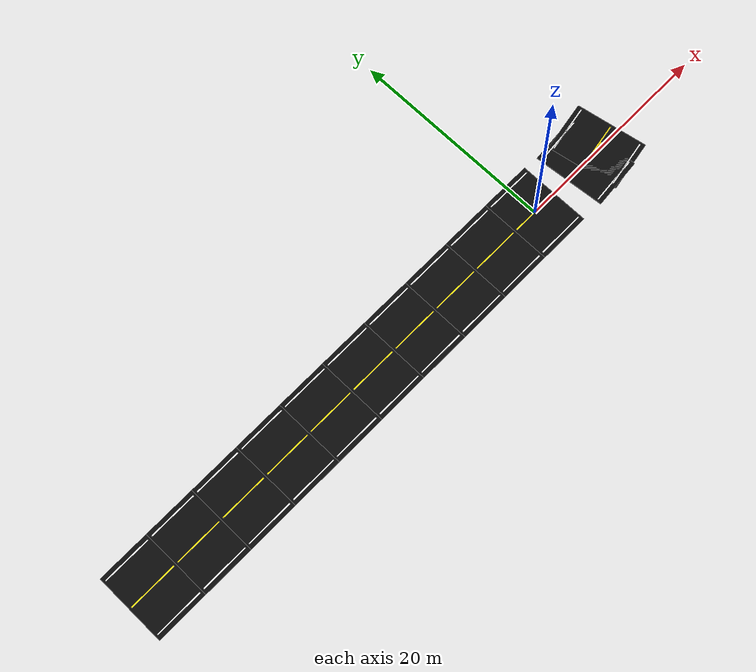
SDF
<sdf version="1.6">
 <world name="curved_road_world">
  <include><uri>model://sun</uri></include>
  <model name="road_straight_00">
   <static>true</static>
   <pose>-45.000 0.000 0.015 0 0 0.000000</pose>
   <link name="road_link">
    <collision name="road_collision"><geometry><box><size>5.000 7.000 0.04</size></box></geometry></collision>
    <visual name="road_visual">
     <geometry><box><size>5.000 7.000 0.04</size></box></geometry>
     <material>
      <ambient>0.025 0.025 0.025 1</ambient>
      <diffuse>0.035 0.035 0.035 1</diffuse>
      <specular>0.01 0.01 0.01 1</specular>
     </material>
    </visual>
   </link>
  </model>
  <model name="road_straight_01">
   <static>true</static>
   <pose>-40.000 0.000 0.015 0 0 0.000000</pose>
   <link name="road_link">
    <collision name="road_collision"><geometry><box><size>5.000 7.000 0.04</size></box></geometry></collision>
    <visual name="road_visual">
     <geometry><box><size>5.000 7.000 0.04</size></box></geometry>
     <material>
      <ambient>0.025 0.025 0.025 1</ambient>
      <diffuse>0.035 0.035 0.035 1</diffuse>
      <specular>0.01 0.01 0.01 1</specular>
     </material>
    </visual>
   </link>
  </model>
  <model name="road_straight_02">
   <static>true</static>
   <pose>-35.000 0.000 0.015 0 0 0.000000</pose>
   <link name="road_link">
    <collision name="road_collision"><geometry><box><size>5.000 7.000 0.04</size></box></geometry></collision>
    <visual name="road_visual">
     <geometry><box><size>5.000 7.000 0.04</size></box></geometry>
     <material>
      <ambient>0.025 0.025 0.025 1</ambient>
      <diffuse>0.035 0.035 0.035 1</diffuse>
      <specular>0.01 0.01 0.01 1</specular>
     </material>
    </visual>
   </link>
  </model>
  <model name="road_straight_03">
   <static>true</static>
   <pose>-30.000 0.000 0.015 0 0 0.000000</pose>
   <link name="road_link">
    <collision name="road_collision"><geometry><box><size>5.000 7.000 0.04</size></box></geometry></collision>
    <visual name="road_visual">
     <geometry><box><size>5.000 7.000 0.04</size></box></geometry>
     <material>
      <ambient>0.025 0.025 0.025 1</ambient>
      <diffuse>0.035 0.035 0.035 1</diffuse>
      <specular>0.01 0.01 0.01 1</specular>
     </material>
    </visual>
   </link>
  </model>
  <model name="road_straight_04">
   <static>true</static>
   <pose>-25.000 0.000 0.015 0 0 0.000000</pose>
   <link name="road_link">
    <collision name="road_collision"><geometry><box><size>5.000 7.000 0.04</size></box></geometry></collision>
    <visual name="road_visual">
     <geometry><box><size>5.000 7.000 0.04</size></box></geometry>
     <material>
      <ambient>0.025 0.025 0.025 1</ambient>
      <diffuse>0.035 0.035 0.035 1</diffuse>
      <specular>0.01 0.01 0.01 1</specular>
     </material>
    </visual>
   </link>
  </model>
  <model name="road_straight_05">
   <static>true</static>
   <pose>-20.000 0.000 0.015 0 0 0.000000</pose>
   <link name="road_link">
    <collision name="road_collision"><geometry><box><size>5.000 7.000 0.04</size></box></geometry></collision>
    <visual name="road_visual">
     <geometry><box><size>5.000 7.000 0.04</size></box></geometry>
     <material>
      <ambient>0.025 0.025 0.025 1</ambient>
      <diffuse>0.035 0.035 0.035 1</diffuse>
      <specular>0.01 0.01 0.01 1</specular>
     </material>
    </visual>
   </link>
  </model>
  <model name="road_straight_06">
   <static>true</static>
   <pose>-15.000 0.000 0.015 0 0 0.000000</pose>
   <link name="road_link">
    <collision name="road_collision"><geometry><box><size>5.000 7.000 0.04</size></box></geometry></collision>
    <visual name="road_visual">
     <geometry><box><size>5.000 7.000 0.04</size></box></geometry>
     <material>
      <ambient>0.025 0.025 0.025 1</ambient>
      <diffuse>0.035 0.035 0.035 1</diffuse>
      <specular>0.01 0.01 0.01 1</specular>
     </material>
    </visual>
   </link>
  </model>
  <model name="road_straight_07">
   <static>true</static>
   <pose>-10.000 0.000 0.015 0 0 0.000000</pose>
   <link name="road_link">
    <collision name="road_collision"><geometry><box><size>5.000 7.000 0.04</size></box></geometry></collision>
    <visual name="road_visual">
     <geometry><box><size>5.000 7.000 0.04</size></box></geometry>
     <material>
      <ambient>0.025 0.025 0.025 1</ambient>
      <diffuse>0.035 0.035 0.035 1</diffuse>
      <specular>0.01 0.01 0.01 1</specular>
     </material>
    </visual>
   </link>
  </model>
  <model name="road_straight_08">
   <static>true</static>
   <pose>-5.000 0.000 0.015 0 0 0.000000</pose>
   <link name="road_link">
    <collision name="road_collision"><geometry><box><size>5.000 7.000 0.04</size></box></geometry></collision>
    <visual name="road_visual">
     <geometry><box><size>5.000 7.000 0.04</size></box></geometry>
     <material>
      <ambient>0.025 0.025 0.025 1</ambient>
      <diffuse>0.035 0.035 0.035 1</diffuse>
      <specular>0.01 0.01 0.01 1</specular>
     </material>
    </visual>
   </link>
  </model>
  <model name="road_straight_09">
   <static>true</static>
   <pose>0.000 0.000 0.015 0 0 0.000000</pose>
   <link name="road_link">
    <collision name="road_collision"><geometry><box><size>5.000 7.000 0.04</size></box></geometry></collision>
    <visual name="road_visual">
     <geometry><box><size>5.000 7.000 0.04</size></box></geometry>
     <material>
      <ambient>0.025 0.025 0.025 1</ambient>
      <diffuse>0.035 0.035 0.035 1</diffuse>
      <specular>0.01 0.01 0.01 1</specular>
     </material>
    </visual>
   </link>
  </model>
  <model name="road_left_90_curve_01">
   <static>true</static>
   <pose>6.743 0.076 0.015 0 0 0.087266</pose>
   <link name="road_link">
    <collision name="road_collision"><geometry><box><size>5.000 7.000 0.04</size></box></geometry></collision>
    <visual name="road_visual">
     <geometry><box><size>5.000 7.000 0.04</size></box></geometry>
     <material>
      <ambient>0.025 0.025 0.025 1</ambient>
      <diffuse>0.035 0.035 0.035 1</diffuse>
      <specular>0.01 0.01 0.01 1</specular>
     </material>
    </visual>
   </link>
  </model>
  <model name="road_left_90_curve_02">
   <static>true</static>
   <pose>8.473 0.304 0.015 0 0 0.174533</pose>
   <link name="road_link">
    <collision name="road_collision"><geometry><box><size>5.000 7.000 0.04</size></box></geometry></collision>
    <visual name="road_visual">
     <geometry><box><size>5.000 7.000 0.04</size></box></geometry>
     <material>
      <ambient>0.025 0.025 0.025 1</ambient>
      <diffuse>0.035 0.035 0.035 1</diffuse>
      <specular>0.01 0.01 0.01 1</specular>
     </material>
    </visual>
   </link>
  </model>
  <model name="left_edge_straight_00">
   <static>true</static>
   <pose>-45.000 3.050 0.050 0 0 0.000000</pose>
   <link name="line_link">
    <visual name="line_visual">
     <geometry><box><size>4.600 0.120 0.012</size></box></geometry>
     <material><ambient>1 1 1 1</ambient><diffuse>1 1 1 1</diffuse></material>
    </visual>
   </link>
  </model>
  <model name="right_edge_straight_00">
   <static>true</static>
   <pose>-45.000 -3.050 0.050 0 0 0.000000</pose>
   <link name="line_link">
    <visual name="line_visual">
     <geometry><box><size>4.600 0.120 0.012</size></box></geometry>
     <material><ambient>1 1 1 1</ambient><diffuse>1 1 1 1</diffuse></material>
    </visual>
   </link>
  </model>
  <model name="center_line_straight_00">
   <static>true</static>
   <pose>-45.000 0.000 0.050 0 0 0.000000</pose>
   <link name="line_link">
    <visual name="line_visual">
     <geometry><box><size>4.600 0.120 0.012</size></box></geometry>
     <material><ambient>1 0.85 0.05 1</ambient><diffuse>1 0.85 0.05 1</diffuse></material>
    </visual>
   </link>
  </model>
  <model name="left_edge_straight_01">
   <static>true</static>
   <pose>-40.000 3.050 0.050 0 0 0.000000</pose>
   <link name="line_link">
    <visual name="line_visual">
     <geometry><box><size>4.600 0.120 0.012</size></box></geometry>
     <material><ambient>1 1 1 1</ambient><diffuse>1 1 1 1</diffuse></material>
    </visual>
   </link>
  </model>
  <model name="right_edge_straight_01">
   <static>true</static>
   <pose>-40.000 -3.050 0.050 0 0 0.000000</pose>
   <link name="line_link">
    <visual name="line_visual">
     <geometry><box><size>4.600 0.120 0.012</size></box></geometry>
     <material><ambient>1 1 1 1</ambient><diffuse>1 1 1 1</diffuse></material>
    </visual>
   </link>
  </model>
  <model name="center_line_straight_01">
   <static>true</static>
   <pose>-40.000 0.000 0.050 0 0 0.000000</pose>
   <link name="line_link">
    <visual name="line_visual">
     <geometry><box><size>4.600 0.120 0.012</size></box></geometry>
     <material><ambient>1 0.85 0.05 1</ambient><diffuse>1 0.85 0.05 1</diffuse></material>
    </visual>
   </link>
  </model>
  <model name="left_edge_straight_02">
   <static>true</static>
   <pose>-35.000 3.050 0.050 0 0 0.000000</pose>
   <link name="line_link">
    <visual name="line_visual">
     <geometry><box><size>4.600 0.120 0.012</size></box></geometry>
     <material><ambient>1 1 1 1</ambient><diffuse>1 1 1 1</diffuse></material>
    </visual>
   </link>
  </model>
  <model name="right_edge_straight_02">
   <static>true</static>
   <pose>-35.000 -3.050 0.050 0 0 0.000000</pose>
   <link name="line_link">
    <visual name="line_visual">
     <geometry><box><size>4.600 0.120 0.012</size></box></geometry>
     <material><ambient>1 1 1 1</ambient><diffuse>1 1 1 1</diffuse></material>
    </visual>
   </link>
  </model>
  <model name="center_line_straight_02">
   <static>true</static>
   <pose>-35.000 0.000 0.050 0 0 0.000000</pose>
   <link name="line_link">
    <visual name="line_visual">
     <geometry><box><size>4.600 0.120 0.012</size></box></geometry>
     <material><ambient>1 0.85 0.05 1</ambient><diffuse>1 0.85 0.05 1</diffuse></material>
    </visual>
   </link>
  </model>
  <model name="left_edge_straight_03">
   <static>true</static>
   <pose>-30.000 3.050 0.050 0 0 0.000000</pose>
   <link name="line_link">
    <visual name="line_visual">
     <geometry><box><size>4.600 0.120 0.012</size></box></geometry>
     <material><ambient>1 1 1 1</ambient><diffuse>1 1 1 1</diffuse></material>
    </visual>
   </link>
  </model>
  <model name="right_edge_straight_03">
   <static>true</static>
   <pose>-30.000 -3.050 0.050 0 0 0.000000</pose>
   <link name="line_link">
    <visual name="line_visual">
     <geometry><box><size>4.600 0.120 0.012</size></box></geometry>
     <material><ambient>1 1 1 1</ambient><diffuse>1 1 1 1</diffuse></material>
    </visual>
   </link>
  </model>
  <model name="center_line_straight_03">
   <static>true</static>
   <pose>-30.000 0.000 0.050 0 0 0.000000</pose>
   <link name="line_link">
    <visual name="line_visual">
     <geometry><box><size>4.600 0.120 0.012</size></box></geometry>
     <material><ambient>1 0.85 0.05 1</ambient><diffuse>1 0.85 0.05 1</diffuse></material>
    </visual>
   </link>
  </model>
  <model name="left_edge_straight_04">
   <static>true</static>
   <pose>-25.000 3.050 0.050 0 0 0.000000</pose>
   <link name="line_link">
    <visual name="line_visual">
     <geometry><box><size>4.600 0.120 0.012</size></box></geometry>
     <material><ambient>1 1 1 1</ambient><diffuse>1 1 1 1</diffuse></material>
    </visual>
   </link>
  </model>
  <model name="right_edge_straight_04">
   <static>true</static>
   <pose>-25.000 -3.050 0.050 0 0 0.000000</pose>
   <link name="line_link">
    <visual name="line_visual">
     <geometry><box><size>4.600 0.120 0.012</size></box></geometry>
     <material><ambient>1 1 1 1</ambient><diffuse>1 1 1 1</diffuse></material>
    </visual>
   </link>
  </model>
  <model name="center_line_straight_04">
   <static>true</static>
   <pose>-25.000 0.000 0.050 0 0 0.000000</pose>
   <link name="line_link">
    <visual name="line_visual">
     <geometry><box><size>4.600 0.120 0.012</size></box></geometry>
     <material><ambient>1 0.85 0.05 1</ambient><diffuse>1 0.85 0.05 1</diffuse></material>
    </visual>
   </link>
  </model>
  <model name="left_edge_straight_05">
   <static>true</static>
   <pose>-20.000 3.050 0.050 0 0 0.000000</pose>
   <link name="line_link">
    <visual name="line_visual">
     <geometry><box><size>4.600 0.120 0.012</size></box></geometry>
     <material><ambient>1 1 1 1</ambient><diffuse>1 1 1 1</diffuse></material>
    </visual>
   </link>
  </model>
  <model name="right_edge_straight_05">
   <static>true</static>
   <pose>-20.000 -3.050 0.050 0 0 0.000000</pose>
   <link name="line_link">
    <visual name="line_visual">
     <geometry><box><size>4.600 0.120 0.012</size></box></geometry>
     <material><ambient>1 1 1 1</ambient><diffuse>1 1 1 1</diffuse></material>
    </visual>
   </link>
  </model>
  <model name="center_line_straight_05">
   <static>true</static>
   <pose>-20.000 0.000 0.050 0 0 0.000000</pose>
   <link name="line_link">
    <visual name="line_visual">
     <geometry><box><size>4.600 0.120 0.012</size></box></geometry>
     <material><ambient>1 0.85 0.05 1</ambient><diffuse>1 0.85 0.05 1</diffuse></material>
    </visual>
   </link>
  </model>
  <model name="left_edge_straight_06">
   <static>true</static>
   <pose>-15.000 3.050 0.050 0 0 0.000000</pose>
   <link name="line_link">
    <visual name="line_visual">
     <geometry><box><size>4.600 0.120 0.012</size></box></geometry>
     <material><ambient>1 1 1 1</ambient><diffuse>1 1 1 1</diffuse></material>
    </visual>
   </link>
  </model>
  <model name="right_edge_straight_06">
   <static>true</static>
   <pose>-15.000 -3.050 0.050 0 0 0.000000</pose>
   <link name="line_link">
    <visual name="line_visual">
     <geometry><box><size>4.600 0.120 0.012</size></box></geometry>
     <material><ambient>1 1 1 1</ambient><diffuse>1 1 1 1</diffuse></material>
    </visual>
   </link>
  </model>
  <model name="center_line_straight_06">
   <static>true</static>
   <pose>-15.000 0.000 0.050 0 0 0.000000</pose>
   <link name="line_link">
    <visual name="line_visual">
     <geometry><box><size>4.600 0.120 0.012</size></box></geometry>
     <material><ambient>1 0.85 0.05 1</ambient><diffuse>1 0.85 0.05 1</diffuse></material>
    </visual>
   </link>
  </model>
  <model name="left_edge_straight_07">
   <static>true</static>
   <pose>-10.000 3.050 0.050 0 0 0.000000</pose>
   <link name="line_link">
    <visual name="line_visual">
     <geometry><box><size>4.600 0.120 0.012</size></box></geometry>
     <material><ambient>1 1 1 1</ambient><diffuse>1 1 1 1</diffuse></material>
    </visual>
   </link>
  </model>
  <model name="right_edge_straight_07">
   <static>true</static>
   <pose>-10.000 -3.050 0.050 0 0 0.000000</pose>
   <link name="line_link">
    <visual name="line_visual">
     <geometry><box><size>4.600 0.120 0.012</size></box></geometry>
     <material><ambient>1 1 1 1</ambient><diffuse>1 1 1 1</diffuse></material>
    </visual>
   </link>
  </model>
  <model name="center_line_straight_07">
   <static>true</static>
   <pose>-10.000 0.000 0.050 0 0 0.000000</pose>
   <link name="line_link">
    <visual name="line_visual">
     <geometry><box><size>4.600 0.120 0.012</size></box></geometry>
     <material><ambient>1 0.85 0.05 1</ambient><diffuse>1 0.85 0.05 1</diffuse></material>
    </visual>
   </link>
  </model>
  <model name="left_edge_straight_08">
   <static>true</static>
   <pose>-5.000 3.050 0.050 0 0 0.000000</pose>
   <link name="line_link">
    <visual name="line_visual">
     <geometry><box><size>4.600 0.120 0.012</size></box></geometry>
     <material><ambient>1 1 1 1</ambient><diffuse>1 1 1 1</diffuse></material>
    </visual>
   </link>
  </model>
  <model name="right_edge_straight_08">
   <static>true</static>
   <pose>-5.000 -3.050 0.050 0 0 0.000000</pose>
   <link name="line_link">
    <visual name="line_visual">
     <geometry><box><size>4.600 0.120 0.012</size></box></geometry>
     <material><ambient>1 1 1 1</ambient><diffuse>1 1 1 1</diffuse></material>
    </visual>
   </link>
  </model>
  <model name="center_line_straight_08">
   <static>true</static>
   <pose>-5.000 0.000 0.050 0 0 0.000000</pose>
   <link name="line_link">
    <visual name="line_visual">
     <geometry><box><size>4.600 0.120 0.012</size></box></geometry>
     <material><ambient>1 0.85 0.05 1</ambient><diffuse>1 0.85 0.05 1</diffuse></material>
    </visual>
   </link>
  </model>
  <model name="left_edge_straight_09">
   <static>true</static>
   <pose>0.000 3.050 0.050 0 0 0.000000</pose>
   <link name="line_link">
    <visual name="line_visual">
     <geometry><box><size>4.600 0.120 0.012</size></box></geometry>
     <material><ambient>1 1 1 1</ambient><diffuse>1 1 1 1</diffuse></material>
    </visual>
   </link>
  </model>
  <model name="right_edge_straight_09">
   <static>true</static>
   <pose>0.000 -3.050 0.050 0 0 0.000000</pose>
   <link name="line_link">
    <visual name="line_visual">
     <geometry><box><size>4.600 0.120 0.012</size></box></geometry>
     <material><ambient>1 1 1 1</ambient><diffuse>1 1 1 1</diffuse></material>
    </visual>
   </link>
  </model>
  <model name="center_line_straight_09">
   <static>true</static>
   <pose>0.000 0.000 0.050 0 0 0.000000</pose>
   <link name="line_link">
    <visual name="line_visual">
     <geometry><box><size>4.600 0.120 0.012</size></box></geometry>
     <material><ambient>1 0.85 0.05 1</ambient><diffuse>1 0.85 0.05 1</diffuse></material>
    </visual>
   </link>
  </model>
  <model name="left_edge_left_90_curve_01">
   <static>true</static>
   <pose>6.477 3.114 0.050 0 0 0.087266</pose>
   <link name="line_link">
    <visual name="line_visual">
     <geometry><box><size>4.600 0.120 0.012</size></box></geometry>
     <material><ambient>1 1 1 1</ambient><diffuse>1 1 1 1</diffuse></material>
    </visual>
   </link>
  </model>
  <model name="right_edge_left_90_curve_01">
   <static>true</static>
   <pose>7.009 -2.962 0.050 0 0 0.087266</pose>
   <link name="line_link">
    <visual name="line_visual">
     <geometry><box><size>4.600 0.120 0.012</size></box></geometry>
     <material><ambient>1 1 1 1</ambient><diffuse>1 1 1 1</diffuse></material>
    </visual>
   </link>
  </model>
  <model name="center_line_left_90_curve_01">
   <static>true</static>
   <pose>6.743 0.076 0.050 0 0 0.087266</pose>
   <link name="line_link">
    <visual name="line_visual">
     <geometry><box><size>4.600 0.120 0.012</size></box></geometry>
     <material><ambient>1 0.85 0.05 1</ambient><diffuse>1 0.85 0.05 1</diffuse></material>
    </visual>
   </link>
  </model>
  <model name="left_edge_left_90_curve_02">
   <static>true</static>
   <pose>7.943 3.308 0.050 0 0 0.174533</pose>
   <link name="line_link">
    <visual name="line_visual">
     <geometry><box><size>4.600 0.120 0.012</size></box></geometry>
     <material><ambient>1 1 1 1</ambient><diffuse>1 1 1 1</diffuse></material>
    </visual>
   </link>
  </model>
  <model name="right_edge_left_90_curve_02">
   <static>true</static>
   <pose>9.003 -2.700 0.050 0 0 0.174533</pose>
   <link name="line_link">
    <visual name="line_visual">
     <geometry><box><size>4.600 0.120 0.012</size></box></geometry>
     <material><ambient>1 1 1 1</ambient><diffuse>1 1 1 1</diffuse></material>
    </visual>
   </link>
  </model>
  <model name="center_line_left_90_curve_02">
   <static>true</static>
   <pose>8.473 0.304 0.050 0 0 0.174533</pose>
   <link name="line_link">
    <visual name="line_visual">
     <geometry><box><size>4.600 0.120 0.012</size></box></geometry>
     <material><ambient>1 0.85 0.05 1</ambient><diffuse>1 0.85 0.05 1</diffuse></material>
    </visual>
   </link>
  </model>
 </world>
</sdf>
